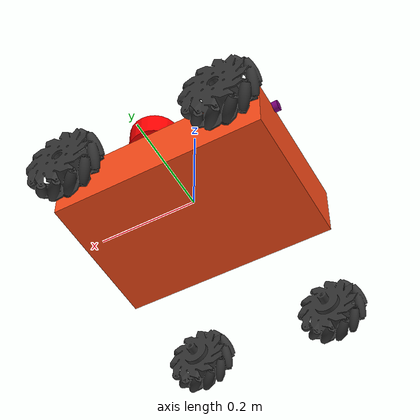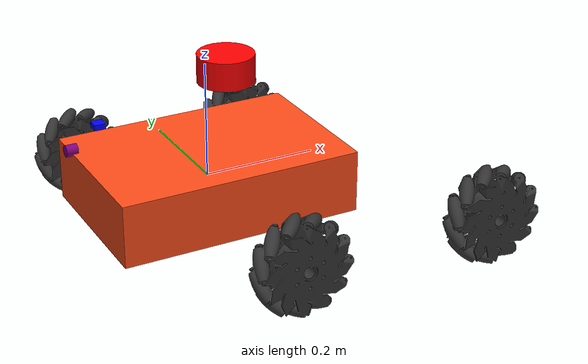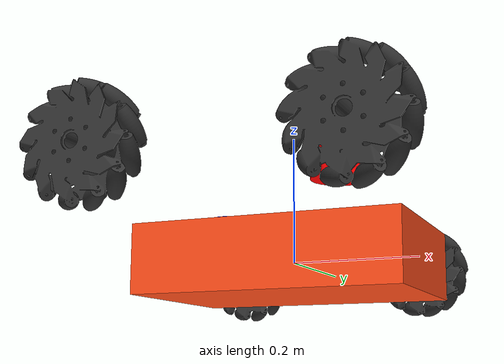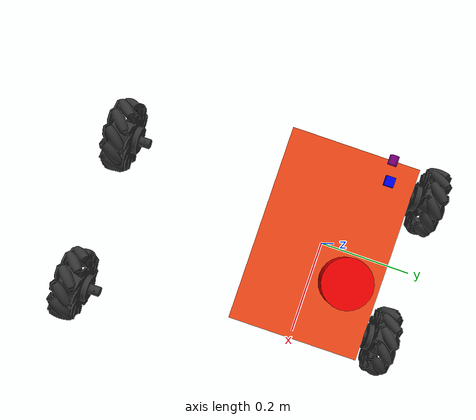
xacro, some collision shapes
<?xml version="1.0"?>
<robot xmlns:xacro="http://www.ros.org/wiki/xacro"  name="roboost_mecanum_robot">

    <xacro:include filename="roboost_materials.xacro"/>

    <!-- TODO: determine values -->
    <xacro:property name="chassis_length" value="0.42"/>
    <xacro:property name="chassis_width" value="0.28"/>
    <xacro:property name="chassis_height" value="0.108"/> <!-- ! Measured from wheel axis to top plate -->
    <xacro:property name="chassis_mass" value="20.0"/>
    <xacro:property name="chassis_inertia" value="4.0"/>

    <xacro:property name="wheel_radius" value="0.0835"/>
    <xacro:property name="wheel_width" value="0.05"/>
    <xacro:property name="wheel_mass" value="1.0"/>
    <xacro:property name="wheel_inertia" value="0.1"/>

    <xacro:property name="lidar_height" value="0.0575"/>

    <xacro:property name="wheelbase" value="0.3185"/>
    <xacro:property name="track" value="0.38"/>

    <link name="base_link">
        <visual>
            <geometry>
                <mesh filename="file://$(find tf_broadcast_package)/meshes/Chassis.STL" scale="0.001 0.001 0.001"/>
            </geometry>

            <origin xyz="0.0 0.0 0.0" rpy="${pi / 2} 0.0 0.0"/>

            <material name="orange"/>
        </visual>
        <collision>
            <geometry>
                <box size="${chassis_length} ${chassis_width} ${chassis_height}"/>
            </geometry>

            <origin xyz="0.0 0.0 0.0" rpy="0.0 0.0 0.0"/>
        </collision>
        <inertial>
            <mass value="${chassis_mass}"/>
            <origin xyz="0.0 0.0 ${chassis_height / 2}" rpy="0.0 0.0 0.0"/>
            <inertia ixx="${chassis_inertia}" ixy="0.0" ixz="0.0" iyy="${chassis_inertia}" iyz="0.0" izz="${chassis_inertia}"/>
        </inertial>
    </link>

    <link name="wheel_front_left_link">
        <visual>
            <geometry>
                <!--cylinder radius="${wheel_radius}" length="${wheel_width}"/-->
                <mesh filename="file://$(find tf_broadcast_package)/meshes/Mecanum-Wheel-Left.STL" scale="0.001 0.001 0.001"/>
            </geometry>

            <origin xyz="0.0 0.0 0.0" rpy="0.0 0.0 0.0"/>

            <material name="grey"/>
        </visual>
        <collision>
            <geometry>
                <cylinder radius="${wheel_radius}" length="${wheel_width}"/>
            </geometry>

            <origin xyz="0.0 0.0 0.0" rpy="0.0 0.0 0.0"/>
        </collision>
        <inertial>
            <mass value="1.0"/>
            <origin xyz="0.0 0.0 0.03" rpy="0.0 0.0 0.0"/>
            <inertia ixx="0.1" ixy="0.0" ixz="0.0" iyy="0.1" iyz="0.0" izz="0.1"/>
        </inertial>
    </link>

    <link name="wheel_front_right_link">
        <visual>
            <geometry>
                <!--cylinder radius="${wheel_radius}" length="${wheel_width}"/-->
                <mesh filename="file://$(find tf_broadcast_package)/meshes/Mecanum-Wheel-Right.STL" scale="0.001 0.001 0.001"/>
            </geometry>

            <origin xyz="0.0 0.0 0.0" rpy="0.0 0.0 0.0"/>

            <material name="grey"/>
        </visual>
        <collision>
            <geometry>
                <cylinder radius="${wheel_radius}" length="${wheel_width}"/>
            </geometry>

            <origin xyz="0.0 0.0 0.0" rpy="0.0 0.0 0.0"/>
        </collision>
        <inertial>
            <mass value="1.0"/>
            <origin xyz="0.0 0.0 0.03" rpy="0.0 0.0 0.0"/>
            <inertia ixx="0.1" ixy="0.0" ixz="0.0" iyy="0.1" iyz="0.0" izz="0.1"/>
        </inertial>
    </link>

    <link name="wheel_back_left_link">
        <visual>
            <geometry>
                <!--cylinder radius="${wheel_radius}" length="${wheel_width}"/-->
                <mesh filename="file://$(find tf_broadcast_package)/meshes/Mecanum-Wheel-Left.STL" scale="0.001 0.001 0.001"/>
            </geometry>

            <origin xyz="0.0 0.0 0.0" rpy="0.0 0.0 0.0"/>

            <material name="grey"/>
        </visual>
        <collision>
            <geometry>
                <cylinder radius="${wheel_radius}" length="${wheel_width}"/>
            </geometry>

            <origin xyz="0.0 0.0 0.0" rpy="0.0 0.0 0.0"/>
        </collision>
        <inertial>
            <mass value="1.0"/>
            <origin xyz="0.0 0.0 0.03" rpy="0.0 0.0 0.0"/>
            <inertia ixx="0.1" ixy="0.0" ixz="0.0" iyy="0.1" iyz="0.0" izz="0.1"/>
        </inertial>
    </link>

    <link name="wheel_back_right_link">
        <visual>
            <geometry>
                <!--cylinder radius="${wheel_radius}" length="${wheel_width}"/-->
                <mesh filename="file://$(find tf_broadcast_package)/meshes/Mecanum-Wheel-Right.STL" scale="0.001 0.001 0.001"/>
            </geometry>

            <origin xyz="0.0 0.0 0.0" rpy="0.0 0.0 0.0"/>

            <material name="grey"/>
        </visual>
        <collision>
            <geometry>
                <cylinder radius="${wheel_radius}" length="${wheel_width}"/>
            </geometry>

            <origin xyz="0.0 0.0 0.0" rpy="0.0 0.0 0.0"/>
        </collision>
        <inertial>
            <mass value="1.0"/>
            <origin xyz="0.0 0.0 0.03" rpy="0.0 0.0 0.0"/>
            <inertia ixx="0.1" ixy="0.0" ixz="0.0" iyy="0.1" iyz="0.0" izz="0.1"/>
        </inertial>
    </link>

    <link name="lidar_link">
        <visual>
            <geometry>
                <mesh filename="file://$(find tf_broadcast_package)/meshes/RP-LiDAR.STL" scale="0.001 0.001 0.001"/>
            </geometry>

            <origin xyz="0.0 0.0 0.042" rpy="-${pi / 2} 0.0 ${pi}"/>

            <material name="red"/>
        </visual>
        <collision>
            <geometry>
                <cylinder radius="0.05" length="0.05"/>
            </geometry>

            <origin xyz="0.0 0.0 0.0" rpy="0.0 0.0 0.0"/>
        </collision>
        <inertial>
            <mass value="1.0"/>
            <origin xyz="0.0 0.0 0.0" rpy="0.0 0.0 0.0"/>
            <inertia ixx="0.1" ixy="0.0" ixz="0.0" iyy="0.1" iyz="0.0" izz="0.1"/>
        </inertial>
    </link>

    <link name="camera_link">
        <visual>
            <geometry>
                <cylinder radius="0.01" length="0.02"/>
                <box size="0.02 0.02 0.01"/>
            </geometry>

            <origin xyz="0.0 0.0 0.0" rpy="0.0 0.0 0.0"/>

            <material name="purple"/>
        </visual>
        <collision>
            <geometry>
                <box size="0.02 0.02 0.02"/>
            </geometry>

            <origin xyz="0.0 0.0 0.0" rpy="0.0 0.0 0.0"/>
        </collision>
        <inertial>
            <mass value="1.0"/>
            <origin xyz="0.0 0.0 0.0" rpy="0.0 0.0 0.0"/>
            <inertia ixx="0.01" ixy="0.0" ixz="0.0" iyy="0.01" iyz="0.0" izz="0.01"/>
        </inertial>
    </link>

    <link name="imu">
        <visual>
            <geometry>
                <box size="0.02 0.02 0.01"/>
            </geometry>

            <origin xyz="0.0 0.0 0.0" rpy="0.0 0.0 0.0"/>

            <material name="blue"/>
        </visual>
        <collision>
            <geometry>
                <box size="0.02 0.02 0.01"/>
            </geometry>

            <origin xyz="0.0 0.0 0.0" rpy="0.0 0.0 0.0"/>
        </collision>
        <inertial>
            <mass value="1.0"/>
            <origin xyz="0.0 0.0 0.0" rpy="0.0 0.0 0.0"/>
            <inertia ixx="0.01" ixy="0.0" ixz="0.0" iyy="0.01" iyz="0.0" izz="0.01"/>
        </inertial>
    </link>

    <joint name="wheel_front_left_joint" type="continuous">
        <parent link="base_link"/>
        <child link="wheel_front_left_link"/>
        <origin xyz="${wheelbase / 2} ${track / 2} 0.0" rpy="${pi * 3 / 2} 0.0 0.0"/>
        <axis xyz="0.0 0.0 1.0"/>
        <limit effort="1000.0" velocity="1000.0"/>
    </joint>

    <joint name="wheel_front_right_joint" type="continuous">
        <parent link="base_link"/>
        <child link="wheel_front_right_link"/>
        <origin xyz="${wheelbase / 2} -${track / 2} 0.0" rpy="${pi / 2} 0.0 0.0"/>
        <axis xyz="0.0 0.0 1.0"/>
        <limit effort="1000.0" velocity="1000.0"/>
    </joint>

    <joint name="wheel_back_left_joint" type="continuous">
        <parent link="base_link"/>
        <child link="wheel_back_left_link"/>
        <origin xyz="-${wheelbase / 2} ${track / 2} 0.0" rpy="${pi * 3 / 2} 0.0 0.0"/>
        <axis xyz="0.0 0.0 1.0"/>
        <limit effort="1000.0" velocity="1000.0"/>
    </joint>

    <joint name="wheel_back_right_joint" type="continuous">
        <parent link="base_link"/>
        <child link="wheel_back_right_link"/>
        <origin xyz="-${wheelbase / 2} -${track / 2} 0.0" rpy="${pi / 2} 0.0 0.0"/>
        <axis xyz="0.0 0.0 1.0"/>
        <limit effort="1000.0" velocity="1000.0"/>
    </joint>

    <joint name="lidar_joint" type="fixed">
        <parent link="base_link"/>
        <child link="lidar_link"/>
        <origin xyz="0.062 0.05 ${chassis_height + lidar_height}" rpy="${pi} 0.0 ${pi * 3/ 2}"/>
    </joint>

    <joint name="camera_joint" type="fixed">
        <parent link="base_link"/>
        <child link="camera_link"/>
        <origin xyz="${-chassis_length / 2} 0.08 ${chassis_height -0.05}" rpy="0.0 ${pi * 3 / 2} 0.0"/>
    </joint>

    <joint name="imu_joint" type="fixed">
        <parent link="base_link"/>
        <child link="imu"/>
        <origin xyz="${-chassis_length / 2 + 0.05} 0.08 ${chassis_height -0.015}" rpy="0.0 0.0 0.0"/>
    </joint>
</robot>

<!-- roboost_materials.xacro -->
<robot xmlns:xacro="http://www.ros.org/wiki/xacro">
    <material name="grey">
        <color rgba="0.2 0.2 0.2 1"/>
    </material>

    <material name="white">
        <color rgba="1 1 1 1"/>
    </material>

    <material name="orange">
        <color rgba="1 0.3 0.1 1"/>
    </material>

    <material name="blue">
        <color rgba="0 0 1 1"/>
    </material>

    <material name="red">
        <color rgba="1 0 0 1"/>
    </material>

    <material name="green">
        <color rgba="0 1 0 1"/>
    </material>

    <material name="yellow">
        <color rgba="1 1 0 1"/>
    </material>

    <material name="black">
        <color rgba="0 0 0 1"/>
    </material>

    <material name="purple">
        <color rgba="0.5 0 0.5 1"/>
    </material>
</robot>
